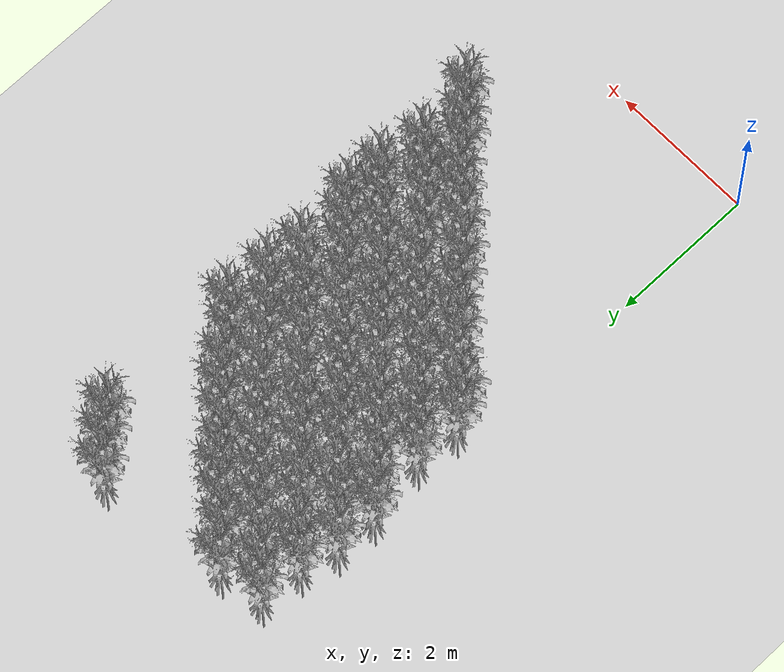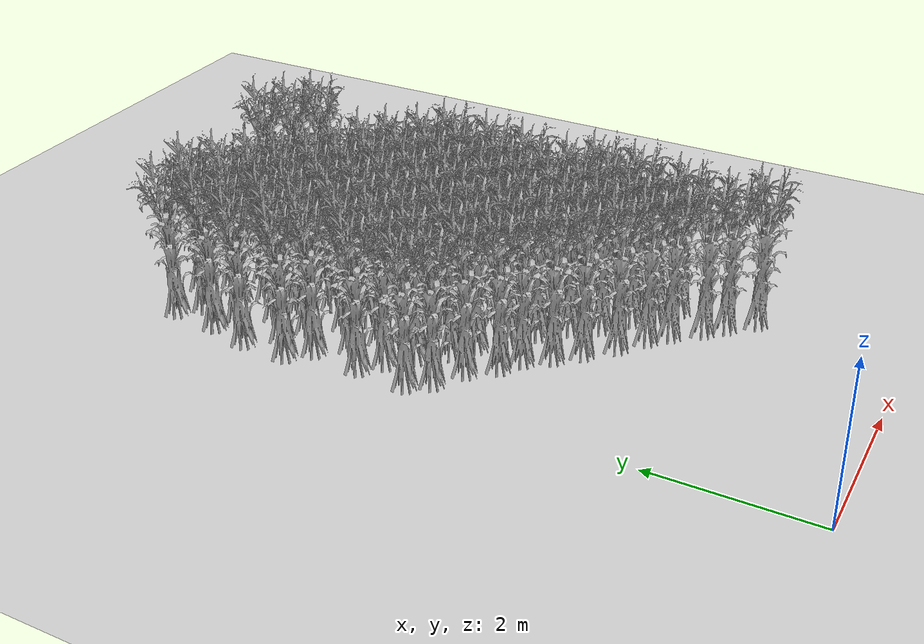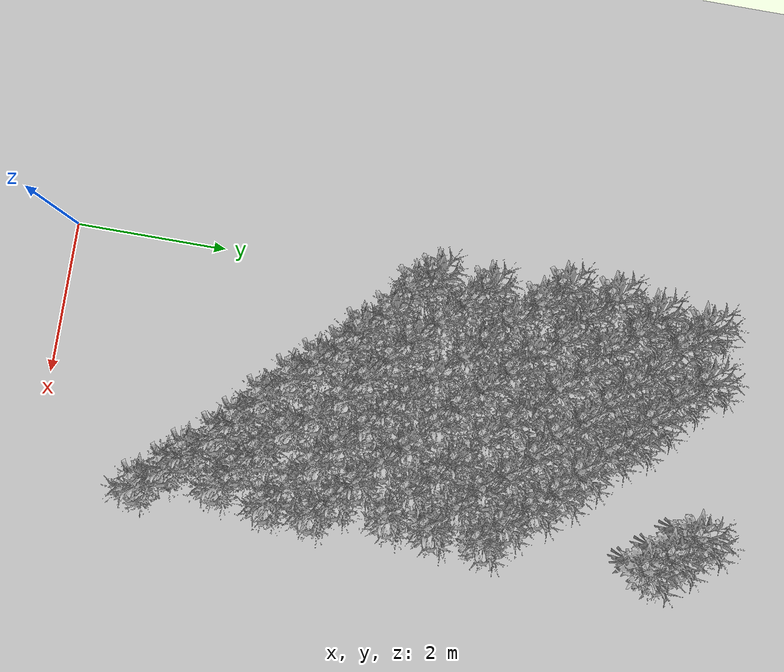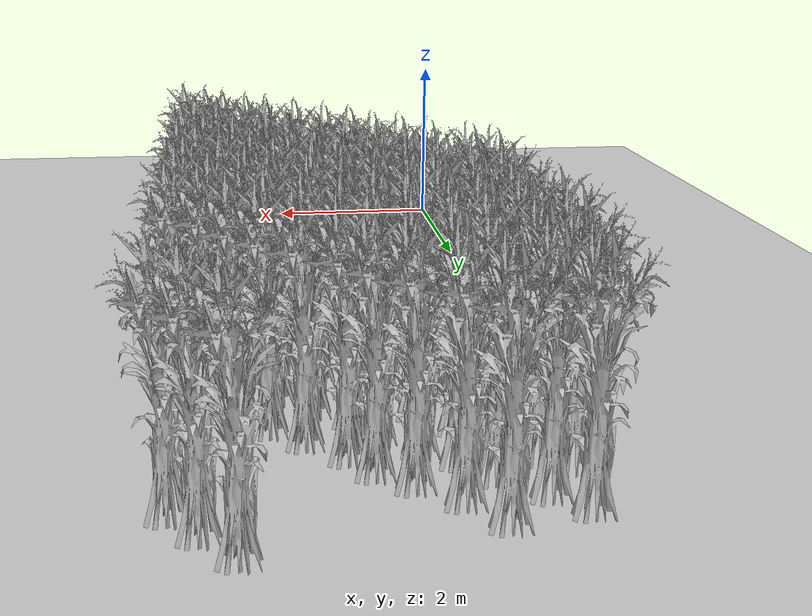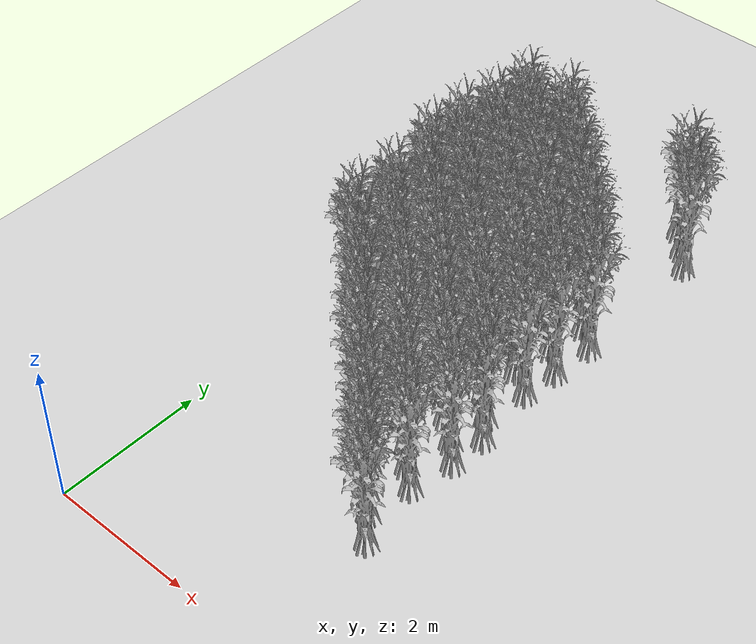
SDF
<sdf version="1.7">
 <world name="farmland_world">
  <model name="ground_plane">
   <static>1</static>
   <link name="link">
    <collision name="collision">
     <geometry><plane><normal>0 0 1</normal><size>40.0 40.0</size></plane></geometry>
     <surface><friction><ode><mu>100</mu><mu2>50</mu2></ode></friction></surface>
    </collision>
    <visual name="visual">
     <cast_shadows>0</cast_shadows>
     <geometry><plane><normal>0 0 1</normal><size>40.0 40.0</size></plane></geometry>
     <material>
      <script><uri>file://media/materials/scripts/gazebo.material</uri><name>Gazebo/Grey</name></script>
     </material>
    </visual>
   </link>
  </model>
  <model name="tree_2_7">
   <static>1</static>
   <link name="link">
    <collision name="collision">
     <geometry><mesh><uri>model://Corn/corn_5p.obj</uri><scale>1 1 1</scale></mesh></geometry>
     <surface><friction><ode><mu>100</mu><mu2>50</mu2></ode></friction></surface>
    </collision>
    <visual name="visual">
     <geometry><mesh><uri>model://Corn/corn_5p.obj</uri><scale>1 1 1</scale></mesh></geometry>
    </visual>
   </link>
   <pose>3.161026772593634 1.7599788649802344 0 0 0 0</pose>
  </model>
  <model name="tree_2_8">
   <static>1</static>
   <link name="link">
    <collision name="collision">
     <geometry><mesh><uri>model://Corn/corn_5p.obj</uri><scale>1 1 1</scale></mesh></geometry>
     <surface><friction><ode><mu>100</mu><mu2>50</mu2></ode></friction></surface>
    </collision>
    <visual name="visual">
     <geometry><mesh><uri>model://Corn/corn_5p.obj</uri><scale>1 1 1</scale></mesh></geometry>
    </visual>
   </link>
   <pose>2.902728075601026 2.0599299980603307 0 0 0 0</pose>
  </model>
  <model name="tree_2_9">
   <static>1</static>
   <link name="link">
    <collision name="collision">
     <geometry><mesh><uri>model://Corn/corn_5p.obj</uri><scale>1 1 1</scale></mesh></geometry>
     <surface><friction><ode><mu>100</mu><mu2>50</mu2></ode></friction></surface>
    </collision>
    <visual name="visual">
     <geometry><mesh><uri>model://Corn/corn_5p.obj</uri><scale>1 1 1</scale></mesh></geometry>
    </visual>
   </link>
   <pose>2.700123445635079 2.2680798346072186 0 0 0 0</pose>
  </model>
  <model name="tree_2_10">
   <static>1</static>
   <link name="link">
    <collision name="collision">
     <geometry><mesh><uri>model://Corn/corn_5p.obj</uri><scale>1 1 1</scale></mesh></geometry>
     <surface><friction><ode><mu>100</mu><mu2>50</mu2></ode></friction></surface>
    </collision>
    <visual name="visual">
     <geometry><mesh><uri>model://Corn/corn_5p.obj</uri><scale>1 1 1</scale></mesh></geometry>
    </visual>
   </link>
   <pose>2.4412175031869756 2.5863544420814337 0 0 0 0</pose>
  </model>
  <model name="tree_2_11">
   <static>1</static>
   <link name="link">
    <collision name="collision">
     <geometry><mesh><uri>model://Corn/corn_5p.obj</uri><scale>1 1 1</scale></mesh></geometry>
     <surface><friction><ode><mu>100</mu><mu2>50</mu2></ode></friction></surface>
    </collision>
    <visual name="visual">
     <geometry><mesh><uri>model://Corn/corn_5p.obj</uri><scale>1 1 1</scale></mesh></geometry>
    </visual>
   </link>
   <pose>2.2288761643939847 2.7925658233045842 0 0 0 0</pose>
  </model>
  <model name="tree_2_12">
   <static>1</static>
   <link name="link">
    <collision name="collision">
     <geometry><mesh><uri>model://Corn/corn_5p.obj</uri><scale>1 1 1</scale></mesh></geometry>
     <surface><friction><ode><mu>100</mu><mu2>50</mu2></ode></friction></surface>
    </collision>
    <visual name="visual">
     <geometry><mesh><uri>model://Corn/corn_5p.obj</uri><scale>1 1 1</scale></mesh></geometry>
    </visual>
   </link>
   <pose>1.923788779430718 3.0364917466249888 0 0 0 0</pose>
  </model>
  <model name="tree_2_13">
   <static>1</static>
   <link name="link">
    <collision name="collision">
     <geometry><mesh><uri>model://Corn/corn_5p.obj</uri><scale>1 1 1</scale></mesh></geometry>
     <surface><friction><ode><mu>100</mu><mu2>50</mu2></ode></friction></surface>
    </collision>
    <visual name="visual">
     <geometry><mesh><uri>model://Corn/corn_5p.obj</uri><scale>1 1 1</scale></mesh></geometry>
    </visual>
   </link>
   <pose>1.6269691821464185 3.3320203818958465 0 0 0 0</pose>
  </model>
  <model name="tree_2_14">
   <static>1</static>
   <link name="link">
    <collision name="collision">
     <geometry><mesh><uri>model://Corn/corn_5p.obj</uri><scale>1 1 1</scale></mesh></geometry>
     <surface><friction><ode><mu>100</mu><mu2>50</mu2></ode></friction></surface>
    </collision>
    <visual name="visual">
     <geometry><mesh><uri>model://Corn/corn_5p.obj</uri><scale>1 1 1</scale></mesh></geometry>
    </visual>
   </link>
   <pose>1.38819604802699 3.601108146339118 0 0 0 0</pose>
  </model>
  <model name="tree_2_15">
   <static>1</static>
   <link name="link">
    <collision name="collision">
     <geometry><mesh><uri>model://Corn/corn_5p.obj</uri><scale>1 1 1</scale></mesh></geometry>
     <surface><friction><ode><mu>100</mu><mu2>50</mu2></ode></friction></surface>
    </collision>
    <visual name="visual">
     <geometry><mesh><uri>model://Corn/corn_5p.obj</uri><scale>1 1 1</scale></mesh></geometry>
    </visual>
   </link>
   <pose>1.1832154308116214 3.883061813637551 0 0 0 0</pose>
  </model>
  <model name="tree_2_16">
   <static>1</static>
   <link name="link">
    <collision name="collision">
     <geometry><mesh><uri>model://Corn/corn_5p.obj</uri><scale>1 1 1</scale></mesh></geometry>
     <surface><friction><ode><mu>100</mu><mu2>50</mu2></ode></friction></surface>
    </collision>
    <visual name="visual">
     <geometry><mesh><uri>model://Corn/corn_5p.obj</uri><scale>1 1 1</scale></mesh></geometry>
    </visual>
   </link>
   <pose>0.9364932637710696 4.053870386266763 0 0 0 0</pose>
  </model>
  <model name="tree_2_17">
   <static>1</static>
   <link name="link">
    <collision name="collision">
     <geometry><mesh><uri>model://Corn/corn_5p.obj</uri><scale>1 1 1</scale></mesh></geometry>
     <surface><friction><ode><mu>100</mu><mu2>50</mu2></ode></friction></surface>
    </collision>
    <visual name="visual">
     <geometry><mesh><uri>model://Corn/corn_5p.obj</uri><scale>1 1 1</scale></mesh></geometry>
    </visual>
   </link>
   <pose>0.6895567535866928 4.356237684138063 0 0 0 0</pose>
  </model>
  <model name="tree_2_18">
   <static>1</static>
   <link name="link">
    <collision name="collision">
     <geometry><mesh><uri>model://Corn/corn_5p.obj</uri><scale>1 1 1</scale></mesh></geometry>
     <surface><friction><ode><mu>100</mu><mu2>50</mu2></ode></friction></surface>
    </collision>
    <visual name="visual">
     <geometry><mesh><uri>model://Corn/corn_5p.obj</uri><scale>1 1 1</scale></mesh></geometry>
    </visual>
   </link>
   <pose>0.336295014910299 4.573606861579561 0 0 0 0</pose>
  </model>
  <model name="tree_2_19">
   <static>1</static>
   <link name="link">
    <collision name="collision">
     <geometry><mesh><uri>model://Corn/corn_5p.obj</uri><scale>1 1 1</scale></mesh></geometry>
     <surface><friction><ode><mu>100</mu><mu2>50</mu2></ode></friction></surface>
    </collision>
    <visual name="visual">
     <geometry><mesh><uri>model://Corn/corn_5p.obj</uri><scale>1 1 1</scale></mesh></geometry>
    </visual>
   </link>
   <pose>0.16100248109887924 4.822778924343438 0 0 0 0</pose>
  </model>
  <model name="tree_2_51">
   <static>1</static>
   <link name="link">
    <collision name="collision">
     <geometry><mesh><uri>model://Corn/corn_5p.obj</uri><scale>1 1 1</scale></mesh></geometry>
     <surface><friction><ode><mu>100</mu><mu2>50</mu2></ode></friction></surface>
    </collision>
    <visual name="visual">
     <geometry><mesh><uri>model://Corn/corn_5p.obj</uri><scale>1 1 1</scale></mesh></geometry>
    </visual>
   </link>
   <pose>3.1354397657840725 3.8019780240868735 0 0 0 0</pose>
  </model>
  <model name="tree_2_52">
   <static>1</static>
   <link name="link">
    <collision name="collision">
     <geometry><mesh><uri>model://Corn/corn_5p.obj</uri><scale>1 1 1</scale></mesh></geometry>
     <surface><friction><ode><mu>100</mu><mu2>50</mu2></ode></friction></surface>
    </collision>
    <visual name="visual">
     <geometry><mesh><uri>model://Corn/corn_5p.obj</uri><scale>1 1 1</scale></mesh></geometry>
    </visual>
   </link>
   <pose>2.9420468713500654 4.071844812329236 0 0 0 0</pose>
  </model>
  <model name="tree_2_53">
   <static>1</static>
   <link name="link">
    <collision name="collision">
     <geometry><mesh><uri>model://Corn/corn_5p.obj</uri><scale>1 1 1</scale></mesh></geometry>
     <surface><friction><ode><mu>100</mu><mu2>50</mu2></ode></friction></surface>
    </collision>
    <visual name="visual">
     <geometry><mesh><uri>model://Corn/corn_5p.obj</uri><scale>1 1 1</scale></mesh></geometry>
    </visual>
   </link>
   <pose>2.7023768667167363 4.296157690025946 0 0 0 0</pose>
  </model>
  <model name="tree_2_54">
   <static>1</static>
   <link name="link">
    <collision name="collision">
     <geometry><mesh><uri>model://Corn/corn_5p.obj</uri><scale>1 1 1</scale></mesh></geometry>
     <surface><friction><ode><mu>100</mu><mu2>50</mu2></ode></friction></surface>
    </collision>
    <visual name="visual">
     <geometry><mesh><uri>model://Corn/corn_5p.obj</uri><scale>1 1 1</scale></mesh></geometry>
    </visual>
   </link>
   <pose>2.4105138957602454 4.542997074001911 0 0 0 0</pose>
  </model>
  <model name="tree_2_55">
   <static>1</static>
   <link name="link">
    <collision name="collision">
     <geometry><mesh><uri>model://Corn/corn_5p.obj</uri><scale>1 1 1</scale></mesh></geometry>
     <surface><friction><ode><mu>100</mu><mu2>50</mu2></ode></friction></surface>
    </collision>
    <visual name="visual">
     <geometry><mesh><uri>model://Corn/corn_5p.obj</uri><scale>1 1 1</scale></mesh></geometry>
    </visual>
   </link>
   <pose>2.1984889907278604 4.8213392628063945 0 0 0 0</pose>
  </model>
  <model name="tree_2_56">
   <static>1</static>
   <link name="link">
    <collision name="collision">
     <geometry><mesh><uri>model://Corn/corn_5p.obj</uri><scale>1 1 1</scale></mesh></geometry>
     <surface><friction><ode><mu>100</mu><mu2>50</mu2></ode></friction></surface>
    </collision>
    <visual name="visual">
     <geometry><mesh><uri>model://Corn/corn_5p.obj</uri><scale>1 1 1</scale></mesh></geometry>
    </visual>
   </link>
   <pose>1.8726037822978814 5.121575155386396 0 0 0 0</pose>
  </model>
  <model name="tree_2_57">
   <static>1</static>
   <link name="link">
    <collision name="collision">
     <geometry><mesh><uri>model://Corn/corn_5p.obj</uri><scale>1 1 1</scale></mesh></geometry>
     <surface><friction><ode><mu>100</mu><mu2>50</mu2></ode></friction></surface>
    </collision>
    <visual name="visual">
     <geometry><mesh><uri>model://Corn/corn_5p.obj</uri><scale>1 1 1</scale></mesh></geometry>
    </visual>
   </link>
   <pose>1.6211267512625143 5.356934471125239 0 0 0 0</pose>
  </model>
  <model name="tree_2_58">
   <static>1</static>
   <link name="link">
    <collision name="collision">
     <geometry><mesh><uri>model://Corn/corn_5p.obj</uri><scale>1 1 1</scale></mesh></geometry>
     <surface><friction><ode><mu>100</mu><mu2>50</mu2></ode></friction></surface>
    </collision>
    <visual name="visual">
     <geometry><mesh><uri>model://Corn/corn_5p.obj</uri><scale>1 1 1</scale></mesh></geometry>
    </visual>
   </link>
   <pose>1.3519129959657201 5.589383080395658 0 0 0 0</pose>
  </model>
  <model name="tree_2_59">
   <static>1</static>
   <link name="link">
    <collision name="collision">
     <geometry><mesh><uri>model://Corn/corn_5p.obj</uri><scale>1 1 1</scale></mesh></geometry>
     <surface><friction><ode><mu>100</mu><mu2>50</mu2></ode></friction></surface>
    </collision>
    <visual name="visual">
     <geometry><mesh><uri>model://Corn/corn_5p.obj</uri><scale>1 1 1</scale></mesh></geometry>
    </visual>
   </link>
   <pose>1.113786810830242 5.890936258399612 0 0 0 0</pose>
  </model>
  <model name="tree_2_60">
   <static>1</static>
   <link name="link">
    <collision name="collision">
     <geometry><mesh><uri>model://Corn/corn_5p.obj</uri><scale>1 1 1</scale></mesh></geometry>
     <surface><friction><ode><mu>100</mu><mu2>50</mu2></ode></friction></surface>
    </collision>
    <visual name="visual">
     <geometry><mesh><uri>model://Corn/corn_5p.obj</uri><scale>1 1 1</scale></mesh></geometry>
    </visual>
   </link>
   <pose>0.890506310561842 6.084826815346101 0 0 0 0</pose>
  </model>
  <model name="tree_2_61">
   <static>1</static>
   <link name="link">
    <collision name="collision">
     <geometry><mesh><uri>model://Corn/corn_5p.obj</uri><scale>1 1 1</scale></mesh></geometry>
     <surface><friction><ode><mu>100</mu><mu2>50</mu2></ode></friction></surface>
    </collision>
    <visual name="visual">
     <geometry><mesh><uri>model://Corn/corn_5p.obj</uri><scale>1 1 1</scale></mesh></geometry>
    </visual>
   </link>
   <pose>0.6317059071881255 6.425786126329857 0 0 0 0</pose>
  </model>
  <model name="tree_2_62">
   <static>1</static>
   <link name="link">
    <collision name="collision">
     <geometry><mesh><uri>model://Corn/corn_5p.obj</uri><scale>1 1 1</scale></mesh></geometry>
     <surface><friction><ode><mu>100</mu><mu2>50</mu2></ode></friction></surface>
    </collision>
    <visual name="visual">
     <geometry><mesh><uri>model://Corn/corn_5p.obj</uri><scale>1 1 1</scale></mesh></geometry>
    </visual>
   </link>
   <pose>0.34385129865112196 6.591679369305805 0 0 0 0</pose>
  </model>
  <model name="tree_2_63">
   <static>1</static>
   <link name="link">
    <collision name="collision">
     <geometry><mesh><uri>model://Corn/corn_5p.obj</uri><scale>1 1 1</scale></mesh></geometry>
     <surface><friction><ode><mu>100</mu><mu2>50</mu2></ode></friction></surface>
    </collision>
    <visual name="visual">
     <geometry><mesh><uri>model://Corn/corn_5p.obj</uri><scale>1 1 1</scale></mesh></geometry>
    </visual>
   </link>
   <pose>0.062464318691744534 6.933781690902524 0 0 0 0</pose>
  </model>
  <model name="tree_2_95">
   <static>1</static>
   <link name="link">
    <collision name="collision">
     <geometry><mesh><uri>model://Corn/corn_5p.obj</uri><scale>1 1 1</scale></mesh></geometry>
     <surface><friction><ode><mu>100</mu><mu2>50</mu2></ode></friction></surface>
    </collision>
    <visual name="visual">
     <geometry><mesh><uri>model://Corn/corn_5p.obj</uri><scale>1 1 1</scale></mesh></geometry>
    </visual>
   </link>
   <pose>3.1376982185016042 5.8385947800849785 0 0 0 0</pose>
  </model>
  <model name="tree_2_96">
   <static>1</static>
   <link name="link">
    <collision name="collision">
     <geometry><mesh><uri>model://Corn/corn_5p.obj</uri><scale>1 1 1</scale></mesh></geometry>
     <surface><friction><ode><mu>100</mu><mu2>50</mu2></ode></friction></surface>
    </collision>
    <visual name="visual">
     <geometry><mesh><uri>model://Corn/corn_5p.obj</uri><scale>1 1 1</scale></mesh></geometry>
    </visual>
   </link>
   <pose>2.8602444640860845 6.067234282981431 0 0 0 0</pose>
  </model>
  <model name="tree_2_97">
   <static>1</static>
   <link name="link">
    <collision name="collision">
     <geometry><mesh><uri>model://Corn/corn_5p.obj</uri><scale>1 1 1</scale></mesh></geometry>
     <surface><friction><ode><mu>100</mu><mu2>50</mu2></ode></friction></surface>
    </collision>
    <visual name="visual">
     <geometry><mesh><uri>model://Corn/corn_5p.obj</uri><scale>1 1 1</scale></mesh></geometry>
    </visual>
   </link>
   <pose>2.6335107822327952 6.384456341914683 0 0 0 0</pose>
  </model>
  <model name="tree_2_98">
   <static>1</static>
   <link name="link">
    <collision name="collision">
     <geometry><mesh><uri>model://Corn/corn_5p.obj</uri><scale>1 1 1</scale></mesh></geometry>
     <surface><friction><ode><mu>100</mu><mu2>50</mu2></ode></friction></surface>
    </collision>
    <visual name="visual">
     <geometry><mesh><uri>model://Corn/corn_5p.obj</uri><scale>1 1 1</scale></mesh></geometry>
    </visual>
   </link>
   <pose>2.407918904697204 6.65050533954201 0 0 0 0</pose>
  </model>
  <model name="tree_2_99">
   <static>1</static>
   <link name="link">
    <collision name="collision">
     <geometry><mesh><uri>model://Corn/corn_5p.obj</uri><scale>1 1 1</scale></mesh></geometry>
     <surface><friction><ode><mu>100</mu><mu2>50</mu2></ode></friction></surface>
    </collision>
    <visual name="visual">
     <geometry><mesh><uri>model://Corn/corn_5p.obj</uri><scale>1 1 1</scale></mesh></geometry>
    </visual>
   </link>
   <pose>2.1388716087244593 6.886348251837755 0 0 0 0</pose>
  </model>
  <model name="tree_2_100">
   <static>1</static>
   <link name="link">
    <collision name="collision">
     <geometry><mesh><uri>model://Corn/corn_5p.obj</uri><scale>1 1 1</scale></mesh></geometry>
     <surface><friction><ode><mu>100</mu><mu2>50</mu2></ode></friction></surface>
    </collision>
    <visual name="visual">
     <geometry><mesh><uri>model://Corn/corn_5p.obj</uri><scale>1 1 1</scale></mesh></geometry>
    </visual>
   </link>
   <pose>1.8359934463959022 7.144153448795607 0 0 0 0</pose>
  </model>
  <model name="tree_2_101">
   <static>1</static>
   <link name="link">
    <collision name="collision">
     <geometry><mesh><uri>model://Corn/corn_5p.obj</uri><scale>1 1 1</scale></mesh></geometry>
     <surface><friction><ode><mu>100</mu><mu2>50</mu2></ode></friction></surface>
    </collision>
    <visual name="visual">
     <geometry><mesh><uri>model://Corn/corn_5p.obj</uri><scale>1 1 1</scale></mesh></geometry>
    </visual>
   </link>
   <pose>1.6608131239755113 7.396605034236771 0 0 0 0</pose>
  </model>
  <model name="tree_2_102">
   <static>1</static>
   <link name="link">
    <collision name="collision">
     <geometry><mesh><uri>model://Corn/corn_5p.obj</uri><scale>1 1 1</scale></mesh></geometry>
     <surface><friction><ode><mu>100</mu><mu2>50</mu2></ode></friction></surface>
    </collision>
    <visual name="visual">
     <geometry><mesh><uri>model://Corn/corn_5p.obj</uri><scale>1 1 1</scale></mesh></geometry>
    </visual>
   </link>
   <pose>1.3994643183538749 7.600556293159158 0 0 0 0</pose>
  </model>
  <model name="tree_2_103">
   <static>1</static>
   <link name="link">
    <collision name="collision">
     <geometry><mesh><uri>model://Corn/corn_5p.obj</uri><scale>1 1 1</scale></mesh></geometry>
     <surface><friction><ode><mu>100</mu><mu2>50</mu2></ode></friction></surface>
    </collision>
    <visual name="visual">
     <geometry><mesh><uri>model://Corn/corn_5p.obj</uri><scale>1 1 1</scale></mesh></geometry>
    </visual>
   </link>
   <pose>1.0895368255250606 7.852464159271354 0 0 0 0</pose>
  </model>
  <model name="tree_2_104">
   <static>1</static>
   <link name="link">
    <collision name="collision">
     <geometry><mesh><uri>model://Corn/corn_5p.obj</uri><scale>1 1 1</scale></mesh></geometry>
     <surface><friction><ode><mu>100</mu><mu2>50</mu2></ode></friction></surface>
    </collision>
    <visual name="visual">
     <geometry><mesh><uri>model://Corn/corn_5p.obj</uri><scale>1 1 1</scale></mesh></geometry>
    </visual>
   </link>
   <pose>0.849400932687065 8.157614730351709 0 0 0 0</pose>
  </model>
  <model name="tree_2_139">
   <static>1</static>
   <link name="link">
    <collision name="collision">
     <geometry><mesh><uri>model://Corn/corn_5p.obj</uri><scale>1 1 1</scale></mesh></geometry>
     <surface><friction><ode><mu>100</mu><mu2>50</mu2></ode></friction></surface>
    </collision>
    <visual name="visual">
     <geometry><mesh><uri>model://Corn/corn_5p.obj</uri><scale>1 1 1</scale></mesh></geometry>
    </visual>
   </link>
   <pose>3.1421048028578453 7.836536715812877 0 0 0 0</pose>
  </model>
  <model name="tree_2_140">
   <static>1</static>
   <link name="link">
    <collision name="collision">
     <geometry><mesh><uri>model://Corn/corn_5p.obj</uri><scale>1 1 1</scale></mesh></geometry>
     <surface><friction><ode><mu>100</mu><mu2>50</mu2></ode></friction></surface>
    </collision>
    <visual name="visual">
     <geometry><mesh><uri>model://Corn/corn_5p.obj</uri><scale>1 1 1</scale></mesh></geometry>
    </visual>
   </link>
   <pose>2.919774350411623 8.104311867272443 0 0 0 0</pose>
  </model>
  <model name="tree_2_141">
   <static>1</static>
   <link name="link">
    <collision name="collision">
     <geometry><mesh><uri>model://Corn/corn_5p.obj</uri><scale>1 1 1</scale></mesh></geometry>
     <surface><friction><ode><mu>100</mu><mu2>50</mu2></ode></friction></surface>
    </collision>
    <visual name="visual">
     <geometry><mesh><uri>model://Corn/corn_5p.obj</uri><scale>1 1 1</scale></mesh></geometry>
    </visual>
   </link>
   <pose>2.659599371599004 8.390971691206715 0 0 0 0</pose>
  </model>
  <model name="tree_2_249">
   <static>1</static>
   <link name="link">
    <collision name="collision">
     <geometry><mesh><uri>model://Corn/corn_5p.obj</uri><scale>1 1 1</scale></mesh></geometry>
     <surface><friction><ode><mu>100</mu><mu2>50</mu2></ode></friction></surface>
    </collision>
    <visual name="visual">
     <geometry><mesh><uri>model://Corn/corn_5p.obj</uri><scale>1 1 1</scale></mesh></geometry>
    </visual>
   </link>
   <pose>3.002351250411659 2.6710055459534225 0 0 0 0</pose>
  </model>
  <model name="tree_2_250">
   <static>1</static>
   <link name="link">
    <collision name="collision">
     <geometry><mesh><uri>model://Corn/corn_5p.obj</uri><scale>1 1 1</scale></mesh></geometry>
     <surface><friction><ode><mu>100</mu><mu2>50</mu2></ode></friction></surface>
    </collision>
    <visual name="visual">
     <geometry><mesh><uri>model://Corn/corn_5p.obj</uri><scale>1 1 1</scale></mesh></geometry>
    </visual>
   </link>
   <pose>2.749865122604425 2.8827055713084704 0 0 0 0</pose>
  </model>
  <model name="tree_2_251">
   <static>1</static>
   <link name="link">
    <collision name="collision">
     <geometry><mesh><uri>model://Corn/corn_5p.obj</uri><scale>1 1 1</scale></mesh></geometry>
     <surface><friction><ode><mu>100</mu><mu2>50</mu2></ode></friction></surface>
    </collision>
    <visual name="visual">
     <geometry><mesh><uri>model://Corn/corn_5p.obj</uri><scale>1 1 1</scale></mesh></geometry>
    </visual>
   </link>
   <pose>2.537178491172252 3.1075432367561673 0 0 0 0</pose>
  </model>
  <model name="tree_2_252">
   <static>1</static>
   <link name="link">
    <collision name="collision">
     <geometry><mesh><uri>model://Corn/corn_5p.obj</uri><scale>1 1 1</scale></mesh></geometry>
     <surface><friction><ode><mu>100</mu><mu2>50</mu2></ode></friction></surface>
    </collision>
    <visual name="visual">
     <geometry><mesh><uri>model://Corn/corn_5p.obj</uri><scale>1 1 1</scale></mesh></geometry>
    </visual>
   </link>
   <pose>2.2211432017085304 3.3646248863270567 0 0 0 0</pose>
  </model>
  <model name="tree_2_253">
   <static>1</static>
   <link name="link">
    <collision name="collision">
     <geometry><mesh><uri>model://Corn/corn_5p.obj</uri><scale>1 1 1</scale></mesh></geometry>
     <surface><friction><ode><mu>100</mu><mu2>50</mu2></ode></friction></surface>
    </collision>
    <visual name="visual">
     <geometry><mesh><uri>model://Corn/corn_5p.obj</uri><scale>1 1 1</scale></mesh></geometry>
    </visual>
   </link>
   <pose>2.0244864941270913 3.6789432313481587 0 0 0 0</pose>
  </model>
  <model name="tree_2_254">
   <static>1</static>
   <link name="link">
    <collision name="collision">
     <geometry><mesh><uri>model://Corn/corn_5p.obj</uri><scale>1 1 1</scale></mesh></geometry>
     <surface><friction><ode><mu>100</mu><mu2>50</mu2></ode></friction></surface>
    </collision>
    <visual name="visual">
     <geometry><mesh><uri>model://Corn/corn_5p.obj</uri><scale>1 1 1</scale></mesh></geometry>
    </visual>
   </link>
   <pose>1.7507231017658786 3.966816193528186 0 0 0 0</pose>
  </model>
  <model name="tree_2_255">
   <static>1</static>
   <link name="link">
    <collision name="collision">
     <geometry><mesh><uri>model://Corn/corn_5p.obj</uri><scale>1 1 1</scale></mesh></geometry>
     <surface><friction><ode><mu>100</mu><mu2>50</mu2></ode></friction></surface>
    </collision>
    <visual name="visual">
     <geometry><mesh><uri>model://Corn/corn_5p.obj</uri><scale>1 1 1</scale></mesh></geometry>
    </visual>
   </link>
   <pose>1.48033136641931 4.214433620055553 0 0 0 0</pose>
  </model>
  <model name="tree_2_256">
   <static>1</static>
   <link name="link">
    <collision name="collision">
     <geometry><mesh><uri>model://Corn/corn_5p.obj</uri><scale>1 1 1</scale></mesh></geometry>
     <surface><friction><ode><mu>100</mu><mu2>50</mu2></ode></friction></surface>
    </collision>
    <visual name="visual">
     <geometry><mesh><uri>model://Corn/corn_5p.obj</uri><scale>1 1 1</scale></mesh></geometry>
    </visual>
   </link>
   <pose>1.1993637054037625 4.47989151687174 0 0 0 0</pose>
  </model>
  <model name="tree_2_257">
   <static>1</static>
   <link name="link">
    <collision name="collision">
     <geometry><mesh><uri>model://Corn/corn_5p.obj</uri><scale>1 1 1</scale></mesh></geometry>
     <surface><friction><ode><mu>100</mu><mu2>50</mu2></ode></friction></surface>
    </collision>
    <visual name="visual">
     <geometry><mesh><uri>model://Corn/corn_5p.obj</uri><scale>1 1 1</scale></mesh></geometry>
    </visual>
   </link>
   <pose>0.9372791086134621 4.66729649436512 0 0 0 0</pose>
  </model>
  <model name="tree_2_258">
   <static>1</static>
   <link name="link">
    <collision name="collision">
     <geometry><mesh><uri>model://Corn/corn_5p.obj</uri><scale>1 1 1</scale></mesh></geometry>
     <surface><friction><ode><mu>100</mu><mu2>50</mu2></ode></friction></surface>
    </collision>
    <visual name="visual">
     <geometry><mesh><uri>model://Corn/corn_5p.obj</uri><scale>1 1 1</scale></mesh></geometry>
    </visual>
   </link>
   <pose>0.6806268402001991 4.978284976314279 0 0 0 0</pose>
  </model>
  <model name="tree_2_259">
   <static>1</static>
   <link name="link">
    <collision name="collision">
     <geometry><mesh><uri>model://Corn/corn_5p.obj</uri><scale>1 1 1</scale></mesh></geometry>
     <surface><friction><ode><mu>100</mu><mu2>50</mu2></ode></friction></surface>
    </collision>
    <visual name="visual">
     <geometry><mesh><uri>model://Corn/corn_5p.obj</uri><scale>1 1 1</scale></mesh></geometry>
    </visual>
   </link>
   <pose>0.4303239382332977 5.241922211300194 0 0 0 0</pose>
  </model>
  <model name="tree_2_260">
   <static>1</static>
   <link name="link">
    <collision name="collision">
     <geometry><mesh><uri>model://Corn/corn_5p.obj</uri><scale>1 1 1</scale></mesh></geometry>
     <surface><friction><ode><mu>100</mu><mu2>50</mu2></ode></friction></surface>
    </collision>
    <visual name="visual">
     <geometry><mesh><uri>model://Corn/corn_5p.obj</uri><scale>1 1 1</scale></mesh></geometry>
    </visual>
   </link>
   <pose>0.196962265989221 5.458535278215518 0 0 0 0</pose>
  </model>
  <model name="tree_2_290">
   <static>1</static>
   <link name="link">
    <collision name="collision">
     <geometry><mesh><uri>model://Corn/corn_5p.obj</uri><scale>1 1 1</scale></mesh></geometry>
     <surface><friction><ode><mu>100</mu><mu2>50</mu2></ode></friction></surface>
    </collision>
    <visual name="visual">
     <geometry><mesh><uri>model://Corn/corn_5p.obj</uri><scale>1 1 1</scale></mesh></geometry>
    </visual>
   </link>
   <pose>3.1147490782465113 3.277863740459683 0 0 0 0</pose>
  </model>
  <model name="tree_2_291">
   <static>1</static>
   <link name="link">
    <collision name="collision">
     <geometry><mesh><uri>model://Corn/corn_5p.obj</uri><scale>1 1 1</scale></mesh></geometry>
     <surface><friction><ode><mu>100</mu><mu2>50</mu2></ode></friction></surface>
    </collision>
    <visual name="visual">
     <geometry><mesh><uri>model://Corn/corn_5p.obj</uri><scale>1 1 1</scale></mesh></geometry>
    </visual>
   </link>
   <pose>2.8750814749227787 3.512017315134821 0 0 0 0</pose>
  </model>
  <model name="tree_2_292">
   <static>1</static>
   <link name="link">
    <collision name="collision">
     <geometry><mesh><uri>model://Corn/corn_5p.obj</uri><scale>1 1 1</scale></mesh></geometry>
     <surface><friction><ode><mu>100</mu><mu2>50</mu2></ode></friction></surface>
    </collision>
    <visual name="visual">
     <geometry><mesh><uri>model://Corn/corn_5p.obj</uri><scale>1 1 1</scale></mesh></geometry>
    </visual>
   </link>
   <pose>2.573418399671197 3.7635757540843544 0 0 0 0</pose>
  </model>
  <model name="tree_2_293">
   <static>1</static>
   <link name="link">
    <collision name="collision">
     <geometry><mesh><uri>model://Corn/corn_5p.obj</uri><scale>1 1 1</scale></mesh></geometry>
     <surface><friction><ode><mu>100</mu><mu2>50</mu2></ode></friction></surface>
    </collision>
    <visual name="visual">
     <geometry><mesh><uri>model://Corn/corn_5p.obj</uri><scale>1 1 1</scale></mesh></geometry>
    </visual>
   </link>
   <pose>2.3060499689916614 4.015305596236378 0 0 0 0</pose>
  </model>
  <model name="tree_2_294">
   <static>1</static>
   <link name="link">
    <collision name="collision">
     <geometry><mesh><uri>model://Corn/corn_5p.obj</uri><scale>1 1 1</scale></mesh></geometry>
     <surface><friction><ode><mu>100</mu><mu2>50</mu2></ode></friction></surface>
    </collision>
    <visual name="visual">
     <geometry><mesh><uri>model://Corn/corn_5p.obj</uri><scale>1 1 1</scale></mesh></geometry>
    </visual>
   </link>
   <pose>2.0383521990407076 4.307501022194183 0 0 0 0</pose>
  </model>
  <model name="tree_2_295">
   <static>1</static>
   <link name="link">
    <collision name="collision">
     <geometry><mesh><uri>model://Corn/corn_5p.obj</uri><scale>1 1 1</scale></mesh></geometry>
     <surface><friction><ode><mu>100</mu><mu2>50</mu2></ode></friction></surface>
    </collision>
    <visual name="visual">
     <geometry><mesh><uri>model://Corn/corn_5p.obj</uri><scale>1 1 1</scale></mesh></geometry>
    </visual>
   </link>
   <pose>1.8184705190711266 4.527845931566325 0 0 0 0</pose>
  </model>
  <model name="tree_2_296">
   <static>1</static>
   <link name="link">
    <collision name="collision">
     <geometry><mesh><uri>model://Corn/corn_5p.obj</uri><scale>1 1 1</scale></mesh></geometry>
     <surface><friction><ode><mu>100</mu><mu2>50</mu2></ode></friction></surface>
    </collision>
    <visual name="visual">
     <geometry><mesh><uri>model://Corn/corn_5p.obj</uri><scale>1 1 1</scale></mesh></geometry>
    </visual>
   </link>
   <pose>1.6103914725752 4.731701822243627 0 0 0 0</pose>
  </model>
  <model name="tree_2_297">
   <static>1</static>
   <link name="link">
    <collision name="collision">
     <geometry><mesh><uri>model://Corn/corn_5p.obj</uri><scale>1 1 1</scale></mesh></geometry>
     <surface><friction><ode><mu>100</mu><mu2>50</mu2></ode></friction></surface>
    </collision>
    <visual name="visual">
     <geometry><mesh><uri>model://Corn/corn_5p.obj</uri><scale>1 1 1</scale></mesh></geometry>
    </visual>
   </link>
   <pose>1.3392158895950168 5.000863741906969 0 0 0 0</pose>
  </model>
  <model name="tree_2_298">
   <static>1</static>
   <link name="link">
    <collision name="collision">
     <geometry><mesh><uri>model://Corn/corn_5p.obj</uri><scale>1 1 1</scale></mesh></geometry>
     <surface><friction><ode><mu>100</mu><mu2>50</mu2></ode></friction></surface>
    </collision>
    <visual name="visual">
     <geometry><mesh><uri>model://Corn/corn_5p.obj</uri><scale>1 1 1</scale></mesh></geometry>
    </visual>
   </link>
   <pose>1.0346737342725678 5.314421967335104 0 0 0 0</pose>
  </model>
  <model name="tree_2_299">
   <static>1</static>
   <link name="link">
    <collision name="collision">
     <geometry><mesh><uri>model://Corn/corn_5p.obj</uri><scale>1 1 1</scale></mesh></geometry>
     <surface><friction><ode><mu>100</mu><mu2>50</mu2></ode></friction></surface>
    </collision>
    <visual name="visual">
     <geometry><mesh><uri>model://Corn/corn_5p.obj</uri><scale>1 1 1</scale></mesh></geometry>
    </visual>
   </link>
   <pose>0.8258623797610694 5.544763655385532 0 0 0 0</pose>
  </model>
  <model name="tree_2_300">
   <static>1</static>
   <link name="link">
    <collision name="collision">
     <geometry><mesh><uri>model://Corn/corn_5p.obj</uri><scale>1 1 1</scale></mesh></geometry>
     <surface><friction><ode><mu>100</mu><mu2>50</mu2></ode></friction></surface>
    </collision>
    <visual name="visual">
     <geometry><mesh><uri>model://Corn/corn_5p.obj</uri><scale>1 1 1</scale></mesh></geometry>
    </visual>
   </link>
   <pose>0.5218358147960352 5.752771131634171 0 0 0 0</pose>
  </model>
  <model name="tree_2_301">
   <static>1</static>
   <link name="link">
    <collision name="collision">
     <geometry><mesh><uri>model://Corn/corn_5p.obj</uri><scale>1 1 1</scale></mesh></geometry>
     <surface><friction><ode><mu>100</mu><mu2>50</mu2></ode></friction></surface>
    </collision>
    <visual name="visual">
     <geometry><mesh><uri>model://Corn/corn_5p.obj</uri><scale>1 1 1</scale></mesh></geometry>
    </visual>
   </link>
   <pose>0.2726425718574147 6.091698695500467 0 0 0 0</pose>
  </model>
  <model name="tree_2_302">
   <static>1</static>
   <link name="link">
    <collision name="collision">
     <geometry><mesh><uri>model://Corn/corn_5p.obj</uri><scale>1 1 1</scale></mesh></geometry>
     <surface><friction><ode><mu>100</mu><mu2>50</mu2></ode></friction></surface>
    </collision>
    <visual name="visual">
     <geometry><mesh><uri>model://Corn/corn_5p.obj</uri><scale>1 1 1</scale></mesh></geometry>
    </visual>
   </link>
   <pose>0.04599185157933193 6.343708353633841 0 0 0 0</pose>
  </model>
  <model name="tree_2_333">
   <static>1</static>
   <link name="link">
    <collision name="collision">
     <geometry><mesh><uri>model://Corn/corn_5p.obj</uri><scale>1 1 1</scale></mesh></geometry>
     <surface><friction><ode><mu>100</mu><mu2>50</mu2></ode></friction></surface>
    </collision>
    <visual name="visual">
     <geometry><mesh><uri>model://Corn/corn_5p.obj</uri><scale>1 1 1</scale></mesh></geometry>
    </visual>
   </link>
   <pose>3.0340180564418304 4.703950613677317 0 0 0 0</pose>
  </model>
  <model name="tree_2_334">
   <static>1</static>
   <link name="link">
    <collision name="collision">
     <geometry><mesh><uri>model://Corn/corn_5p.obj</uri><scale>1 1 1</scale></mesh></geometry>
     <surface><friction><ode><mu>100</mu><mu2>50</mu2></ode></friction></surface>
    </collision>
    <visual name="visual">
     <geometry><mesh><uri>model://Corn/corn_5p.obj</uri><scale>1 1 1</scale></mesh></geometry>
    </visual>
   </link>
   <pose>2.7047914838121647 4.927830163841361 0 0 0 0</pose>
  </model>
  <model name="tree_2_335">
   <static>1</static>
   <link name="link">
    <collision name="collision">
     <geometry><mesh><uri>model://Corn/corn_5p.obj</uri><scale>1 1 1</scale></mesh></geometry>
     <surface><friction><ode><mu>100</mu><mu2>50</mu2></ode></friction></surface>
    </collision>
    <visual name="visual">
     <geometry><mesh><uri>model://Corn/corn_5p.obj</uri><scale>1 1 1</scale></mesh></geometry>
    </visual>
   </link>
   <pose>2.468073896411113 5.209791312690667 0 0 0 0</pose>
  </model>
  <model name="tree_2_336">
   <static>1</static>
   <link name="link">
    <collision name="collision">
     <geometry><mesh><uri>model://Corn/corn_5p.obj</uri><scale>1 1 1</scale></mesh></geometry>
     <surface><friction><ode><mu>100</mu><mu2>50</mu2></ode></friction></surface>
    </collision>
    <visual name="visual">
     <geometry><mesh><uri>model://Corn/corn_5p.obj</uri><scale>1 1 1</scale></mesh></geometry>
    </visual>
   </link>
   <pose>2.277150253219627 5.423026124367649 0 0 0 0</pose>
  </model>
  <model name="tree_2_337">
   <static>1</static>
   <link name="link">
    <collision name="collision">
     <geometry><mesh><uri>model://Corn/corn_5p.obj</uri><scale>1 1 1</scale></mesh></geometry>
     <surface><friction><ode><mu>100</mu><mu2>50</mu2></ode></friction></surface>
    </collision>
    <visual name="visual">
     <geometry><mesh><uri>model://Corn/corn_5p.obj</uri><scale>1 1 1</scale></mesh></geometry>
    </visual>
   </link>
   <pose>1.948731439059886 5.713242898311099 0 0 0 0</pose>
  </model>
  <model name="tree_2_338">
   <static>1</static>
   <link name="link">
    <collision name="collision">
     <geometry><mesh><uri>model://Corn/corn_5p.obj</uri><scale>1 1 1</scale></mesh></geometry>
     <surface><friction><ode><mu>100</mu><mu2>50</mu2></ode></friction></surface>
    </collision>
    <visual name="visual">
     <geometry><mesh><uri>model://Corn/corn_5p.obj</uri><scale>1 1 1</scale></mesh></geometry>
    </visual>
   </link>
   <pose>1.6898009914182834 5.9927173810778385 0 0 0 0</pose>
  </model>
  <model name="tree_2_339">
   <static>1</static>
   <link name="link">
    <collision name="collision">
     <geometry><mesh><uri>model://Corn/corn_5p.obj</uri><scale>1 1 1</scale></mesh></geometry>
     <surface><friction><ode><mu>100</mu><mu2>50</mu2></ode></friction></surface>
    </collision>
    <visual name="visual">
     <geometry><mesh><uri>model://Corn/corn_5p.obj</uri><scale>1 1 1</scale></mesh></geometry>
    </visual>
   </link>
   <pose>1.4363235411374737 6.160029775147586 0 0 0 0</pose>
  </model>
  <model name="tree_2_340">
   <static>1</static>
   <link name="link">
    <collision name="collision">
     <geometry><mesh><uri>model://Corn/corn_5p.obj</uri><scale>1 1 1</scale></mesh></geometry>
     <surface><friction><ode><mu>100</mu><mu2>50</mu2></ode></friction></surface>
    </collision>
    <visual name="visual">
     <geometry><mesh><uri>model://Corn/corn_5p.obj</uri><scale>1 1 1</scale></mesh></geometry>
    </visual>
   </link>
   <pose>1.2192229398748013 6.456283016494795 0 0 0 0</pose>
  </model>
  <model name="tree_2_341">
   <static>1</static>
   <link name="link">
    <collision name="collision">
     <geometry><mesh><uri>model://Corn/corn_5p.obj</uri><scale>1 1 1</scale></mesh></geometry>
     <surface><friction><ode><mu>100</mu><mu2>50</mu2></ode></friction></surface>
    </collision>
    <visual name="visual">
     <geometry><mesh><uri>model://Corn/corn_5p.obj</uri><scale>1 1 1</scale></mesh></geometry>
    </visual>
   </link>
   <pose>0.9319152039997001 6.742434701618418 0 0 0 0</pose>
  </model>
  <model name="tree_2_342">
   <static>1</static>
   <link name="link">
    <collision name="collision">
     <geometry><mesh><uri>model://Corn/corn_5p.obj</uri><scale>1 1 1</scale></mesh></geometry>
     <surface><friction><ode><mu>100</mu><mu2>50</mu2></ode></friction></surface>
    </collision>
    <visual name="visual">
     <geometry><mesh><uri>model://Corn/corn_5p.obj</uri><scale>1 1 1</scale></mesh></geometry>
    </visual>
   </link>
   <pose>0.6837880100401025 6.9273344280975335 0 0 0 0</pose>
  </model>
  <model name="tree_2_343">
   <static>1</static>
   <link name="link">
    <collision name="collision">
     <geometry><mesh><uri>model://Corn/corn_5p.obj</uri><scale>1 1 1</scale></mesh></geometry>
     <surface><friction><ode><mu>100</mu><mu2>50</mu2></ode></friction></surface>
    </collision>
    <visual name="visual">
     <geometry><mesh><uri>model://Corn/corn_5p.obj</uri><scale>1 1 1</scale></mesh></geometry>
    </visual>
   </link>
   <pose>0.40994310214207397 7.274241635792508 0 0 0 0</pose>
  </model>
  <model name="tree_2_344">
   <static>1</static>
   <link name="link">
    <collision name="collision">
     <geometry><mesh><uri>model://Corn/corn_5p.obj</uri><scale>1 1 1</scale></mesh></geometry>
     <surface><friction><ode><mu>100</mu><mu2>50</mu2></ode></friction></surface>
    </collision>
    <visual name="visual">
     <geometry><mesh><uri>model://Corn/corn_5p.obj</uri><scale>1 1 1</scale></mesh></geometry>
    </visual>
   </link>
   <pose>0.18969049389680495 7.443031961780596 0 0 0 0</pose>
  </model>
  <model name="tree_2_374">
   <static>1</static>
   <link name="link">
    <collision name="collision">
     <geometry><mesh><uri>model://Corn/corn_5p.obj</uri><scale>1 1 1</scale></mesh></geometry>
     <surface><friction><ode><mu>100</mu><mu2>50</mu2></ode></friction></surface>
    </collision>
    <visual name="visual">
     <geometry><mesh><uri>model://Corn/corn_5p.obj</uri><scale>1 1 1</scale></mesh></geometry>
    </visual>
   </link>
   <pose>3.0907545376544103 5.220022690232733 0 0 0 0</pose>
  </model>
  <model name="tree_2_375">
   <static>1</static>
   <link name="link">
    <collision name="collision">
     <geometry><mesh><uri>model://Corn/corn_5p.obj</uri><scale>1 1 1</scale></mesh></geometry>
     <surface><friction><ode><mu>100</mu><mu2>50</mu2></ode></friction></surface>
    </collision>
    <visual name="visual">
     <geometry><mesh><uri>model://Corn/corn_5p.obj</uri><scale>1 1 1</scale></mesh></geometry>
    </visual>
   </link>
   <pose>2.79007311194734 5.491511277529132 0 0 0 0</pose>
  </model>
  <model name="tree_2_376">
   <static>1</static>
   <link name="link">
    <collision name="collision">
     <geometry><mesh><uri>model://Corn/corn_5p.obj</uri><scale>1 1 1</scale></mesh></geometry>
     <surface><friction><ode><mu>100</mu><mu2>50</mu2></ode></friction></surface>
    </collision>
    <visual name="visual">
     <geometry><mesh><uri>model://Corn/corn_5p.obj</uri><scale>1 1 1</scale></mesh></geometry>
    </visual>
   </link>
   <pose>2.522715156722804 5.763657529288957 0 0 0 0</pose>
  </model>
  <model name="tree_2_377">
   <static>1</static>
   <link name="link">
    <collision name="collision">
     <geometry><mesh><uri>model://Corn/corn_5p.obj</uri><scale>1 1 1</scale></mesh></geometry>
     <surface><friction><ode><mu>100</mu><mu2>50</mu2></ode></friction></surface>
    </collision>
    <visual name="visual">
     <geometry><mesh><uri>model://Corn/corn_5p.obj</uri><scale>1 1 1</scale></mesh></geometry>
    </visual>
   </link>
   <pose>2.327501988125579 6.059594298658831 0 0 0 0</pose>
  </model>
  <model name="tree_2_378">
   <static>1</static>
   <link name="link">
    <collision name="collision">
     <geometry><mesh><uri>model://Corn/corn_5p.obj</uri><scale>1 1 1</scale></mesh></geometry>
     <surface><friction><ode><mu>100</mu><mu2>50</mu2></ode></friction></surface>
    </collision>
    <visual name="visual">
     <geometry><mesh><uri>model://Corn/corn_5p.obj</uri><scale>1 1 1</scale></mesh></geometry>
    </visual>
   </link>
   <pose>2.0397179407685107 6.328783671879736 0 0 0 0</pose>
  </model>
  <model name="tree_2_379">
   <static>1</static>
   <link name="link">
    <collision name="collision">
     <geometry><mesh><uri>model://Corn/corn_5p.obj</uri><scale>1 1 1</scale></mesh></geometry>
     <surface><friction><ode><mu>100</mu><mu2>50</mu2></ode></friction></surface>
    </collision>
    <visual name="visual">
     <geometry><mesh><uri>model://Corn/corn_5p.obj</uri><scale>1 1 1</scale></mesh></geometry>
    </visual>
   </link>
   <pose>1.7483057138282097 6.538439429847072 0 0 0 0</pose>
  </model>
  <model name="tree_2_380">
   <static>1</static>
   <link name="link">
    <collision name="collision">
     <geometry><mesh><uri>model://Corn/corn_5p.obj</uri><scale>1 1 1</scale></mesh></geometry>
     <surface><friction><ode><mu>100</mu><mu2>50</mu2></ode></friction></surface>
    </collision>
    <visual name="visual">
     <geometry><mesh><uri>model://Corn/corn_5p.obj</uri><scale>1 1 1</scale></mesh></geometry>
    </visual>
   </link>
   <pose>1.570105348585592 6.833681829564188 0 0 0 0</pose>
  </model>
  <model name="tree_2_381">
   <static>1</static>
   <link name="link">
    <collision name="collision">
     <geometry><mesh><uri>model://Corn/corn_5p.obj</uri><scale>1 1 1</scale></mesh></geometry>
     <surface><friction><ode><mu>100</mu><mu2>50</mu2></ode></friction></surface>
    </collision>
    <visual name="visual">
     <geometry><mesh><uri>model://Corn/corn_5p.obj</uri><scale>1 1 1</scale></mesh></geometry>
    </visual>
   </link>
   <pose>1.2777668936511186 7.085471149762927 0 0 0 0</pose>
  </model>
  <model name="tree_2_382">
   <static>1</static>
   <link name="link">
    <collision name="collision">
     <geometry><mesh><uri>model://Corn/corn_5p.obj</uri><scale>1 1 1</scale></mesh></geometry>
     <surface><friction><ode><mu>100</mu><mu2>50</mu2></ode></friction></surface>
    </collision>
    <visual name="visual">
     <geometry><mesh><uri>model://Corn/corn_5p.obj</uri><scale>1 1 1</scale></mesh></geometry>
    </visual>
   </link>
   <pose>1.0172307883236908 7.280155898471828 0 0 0 0</pose>
  </model>
  <model name="tree_2_383">
   <static>1</static>
   <link name="link">
    <collision name="collision">
     <geometry><mesh><uri>model://Corn/corn_5p.obj</uri><scale>1 1 1</scale></mesh></geometry>
     <surface><friction><ode><mu>100</mu><mu2>50</mu2></ode></friction></surface>
    </collision>
    <visual name="visual">
     <geometry><mesh><uri>model://Corn/corn_5p.obj</uri><scale>1 1 1</scale></mesh></geometry>
    </visual>
   </link>
   <pose>0.8114398668311882 7.535325191572684 0 0 0 0</pose>
  </model>
  <model name="tree_2_384">
   <static>1</static>
   <link name="link">
    <collision name="collision">
     <geometry><mesh><uri>model://Corn/corn_5p.obj</uri><scale>1 1 1</scale></mesh></geometry>
     <surface><friction><ode><mu>100</mu><mu2>50</mu2></ode></friction></surface>
    </collision>
    <visual name="visual">
     <geometry><mesh><uri>model://Corn/corn_5p.obj</uri><scale>1 1 1</scale></mesh></geometry>
    </visual>
   </link>
   <pose>0.47072969213485344 7.808717462807053 0 0 0 0</pose>
  </model>
  <model name="tree_2_385">
   <static>1</static>
   <link name="link">
    <collision name="collision">
     <geometry><mesh><uri>model://Corn/corn_5p.obj</uri><scale>1 1 1</scale></mesh></geometry>
     <surface><friction><ode><mu>100</mu><mu2>50</mu2></ode></friction></surface>
    </collision>
    <visual name="visual">
     <geometry><mesh><uri>model://Corn/corn_5p.obj</uri><scale>1 1 1</scale></mesh></geometry>
    </visual>
   </link>
   <pose>0.2412712827281317 8.0469381581805 0 0 0 0</pose>
  </model>
 </world>
</sdf>
